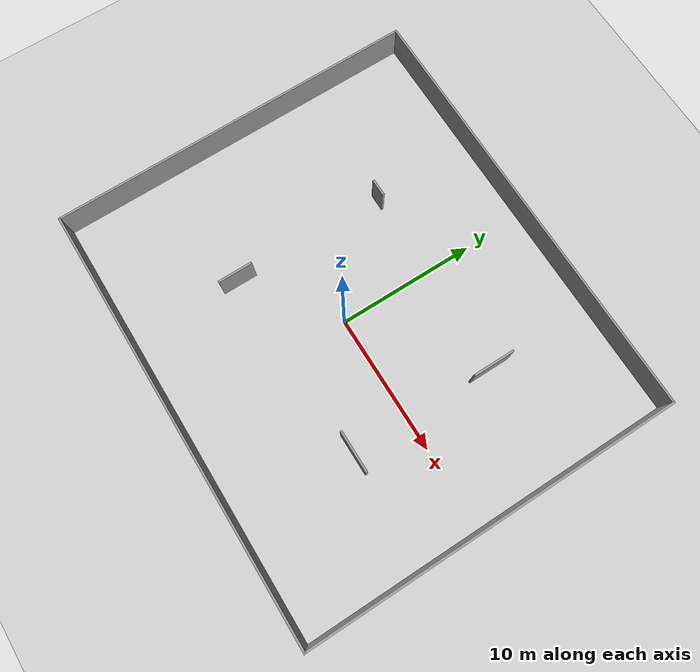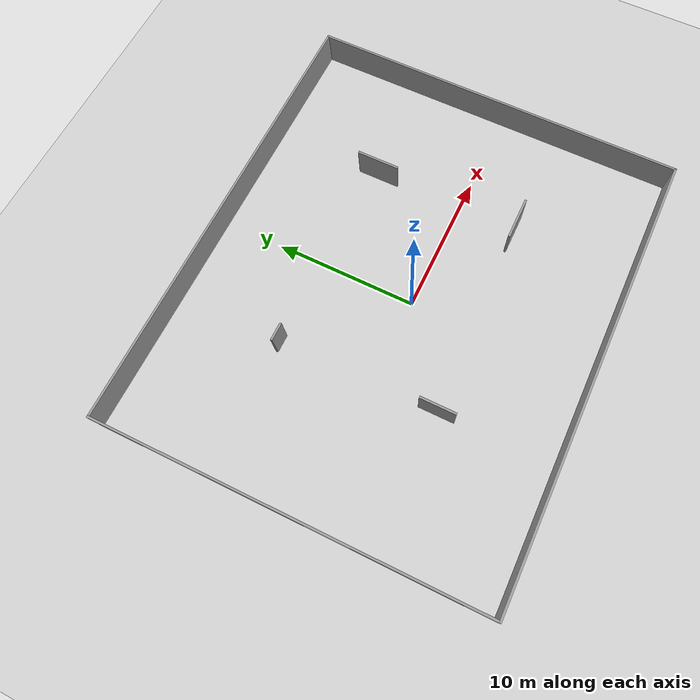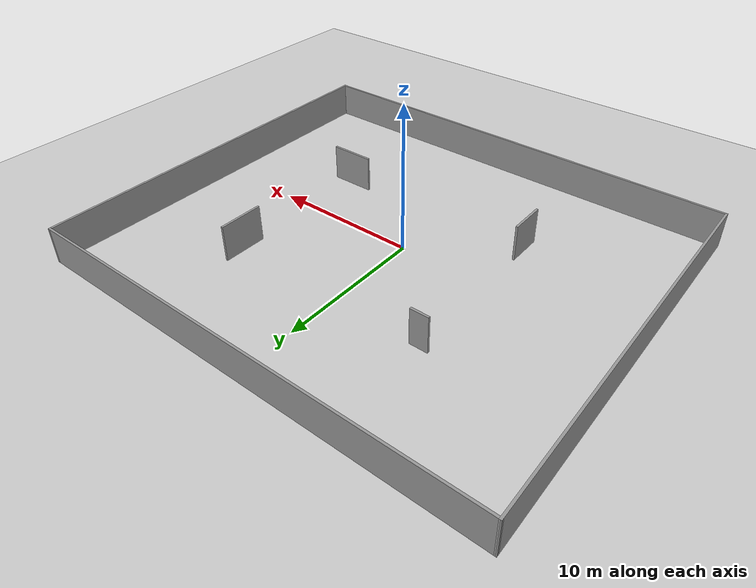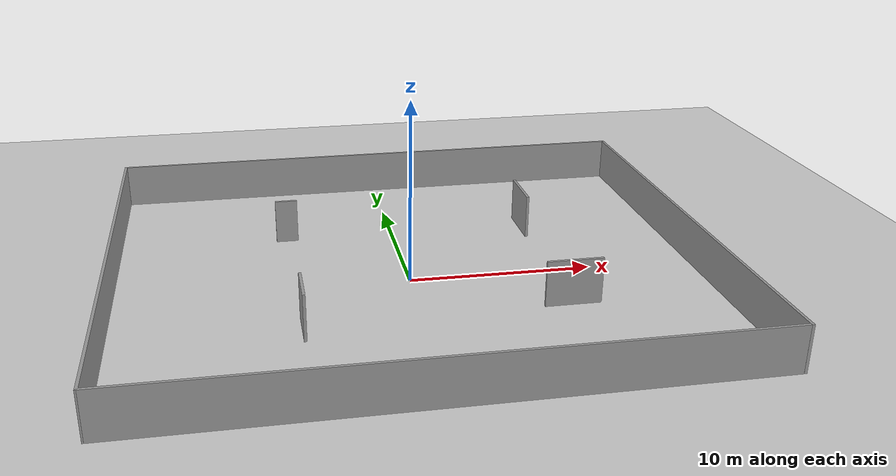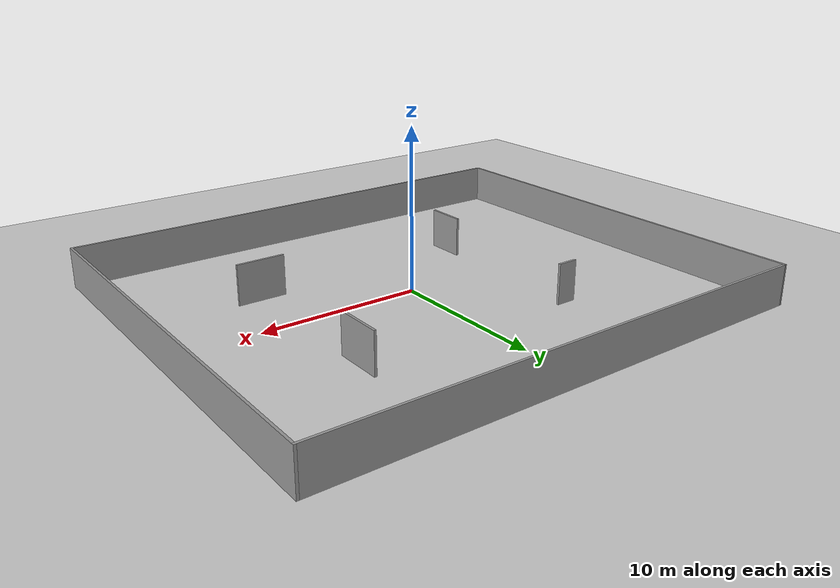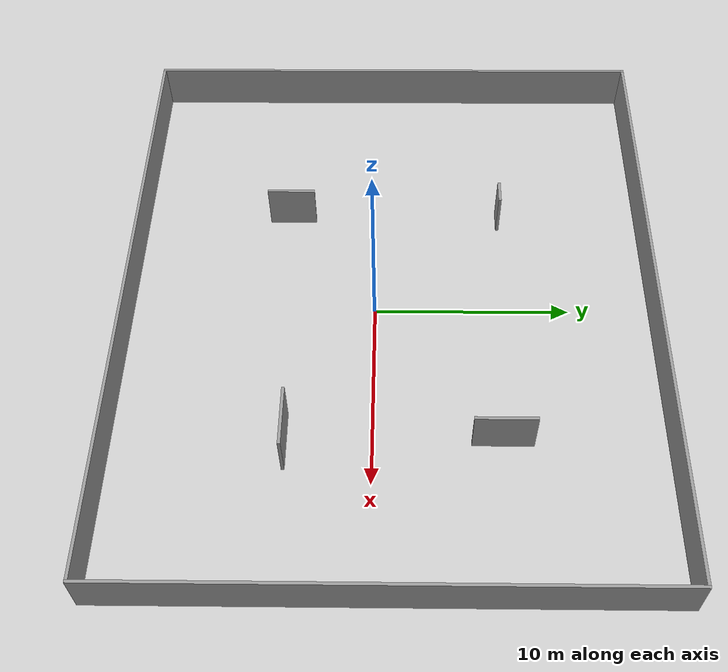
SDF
<sdf version="1.7">
 <world name="default">
  <light name="sun" type="directional">
   <pose>0 0 10 0 -0 0</pose>
   <diffuse>0.8 0.8 0.8 1</diffuse>
   <specular>0.2 0.2 0.2 1</specular>
   <attenuation>
    <range>1000</range>
    <constant>0.9</constant>
    <linear>0.01</linear>
    <quadratic>0.001</quadratic>
   </attenuation>
   <direction>-0.5 0.1 -0.9</direction>
   <spot><inner_angle>0</inner_angle><outer_angle>0</outer_angle><falloff>0</falloff></spot>
  </light>
  <model name="ground_plane">
   <static>1</static>
   <link name="link">
    <collision name="collision">
     <geometry><plane><normal>0 0 1</normal><size>100 100</size></plane></geometry>
     <surface>
      <contact><collide_bitmask>65535</collide_bitmask></contact>
      <friction><ode><mu>100</mu><mu2>50</mu2></ode></friction>
     </surface>
    </collision>
    <visual name="visual">
     <cast_shadows>0</cast_shadows>
     <geometry><plane><normal>0 0 1</normal><size>100 100</size></plane></geometry>
     <material>
      <script><uri>file://media/materials/scripts/gazebo.material</uri><name>Gazebo/Grey</name></script>
     </material>
    </visual>
   </link>
  </model>
  <gravity>0 0 -9.8</gravity>
  <magnetic_field>6e-06 2.3e-05 -4.2e-05</magnetic_field>
  <atmosphere type="adiabatic"/>
  <physics type="ode">
   <max_step_size>0.001</max_step_size>
   <real_time_factor>1</real_time_factor>
   <real_time_update_rate>1000</real_time_update_rate>
  </physics>
  <scene><ambient>0.4 0.4 0.4 1</ambient><background>0.7 0.7 0.7 1</background><shadows>1</shadows></scene>
  <spherical_coordinates>
   <surface_model>EARTH_WGS84</surface_model>
   <latitude_deg>0</latitude_deg>
   <longitude_deg>0</longitude_deg>
   <elevation>0</elevation>
   <heading_deg>0</heading_deg>
  </spherical_coordinates>
  <model name="map5">
   <pose>0.051526 0.82061 0 0 -0 0</pose>
   <link name="Wall_11">
    <collision name="Wall_11_Collision">
     <geometry><box><size>1.25 0.15 2.5</size></box></geometry>
     <pose>0 0 1.25 0 -0 0</pose>
    </collision>
    <visual name="Wall_11_Visual">
     <pose>0 0 1.25 0 -0 0</pose>
     <geometry><box><size>1.25 0.15 2.5</size></box></geometry>
     <material>
      <script><uri>file://media/materials/scripts/gazebo.material</uri><name>Gazebo/Grey</name></script>
      <ambient>1 1 1 1</ambient>
     </material>
     <meta><layer>0</layer></meta>
    </visual>
    <pose>-6.22884 5.77871 0 0 -0 0</pose>
   </link>
   <link name="Wall_13">
    <collision name="Wall_13_Collision">
     <geometry><box><size>2.5 0.15 2.5</size></box></geometry>
     <pose>0 0 1.25 0 -0 0</pose>
    </collision>
    <visual name="Wall_13_Visual">
     <pose>0 0 1.25 0 -0 0</pose>
     <geometry><box><size>2.5 0.15 2.5</size></box></geometry>
     <material>
      <script><uri>file://media/materials/scripts/gazebo.material</uri><name>Gazebo/Grey</name></script>
      <ambient>1 1 1 1</ambient>
     </material>
     <meta><layer>0</layer></meta>
    </visual>
    <pose>-6.17734 -5.37702 0 0 -0 1.5708</pose>
   </link>
   <link name="Wall_15">
    <collision name="Wall_15_Collision">
     <geometry><box><size>3 0.15 2.5</size></box></geometry>
     <pose>0 0 1.25 0 -0 0</pose>
    </collision>
    <visual name="Wall_15_Visual">
     <pose>0 0 1.25 0 -0 0</pose>
     <geometry><box><size>3 0.15 2.5</size></box></geometry>
     <material>
      <script><uri>file://media/materials/scripts/gazebo.material</uri><name>Gazebo/Grey</name></script>
      <ambient>1 1 1 1</ambient>
     </material>
     <meta><layer>0</layer></meta>
    </visual>
    <pose>7.77744 5.43641 0 0 -0 -1.5708</pose>
   </link>
   <link name="Wall_17">
    <collision name="Wall_17_Collision">
     <geometry><box><size>3 0.15 2.5</size></box></geometry>
     <pose>0 0 1.25 0 -0 0</pose>
    </collision>
    <visual name="Wall_17_Visual">
     <pose>0 0 1.25 0 -0 0</pose>
     <geometry><box><size>3 0.15 2.5</size></box></geometry>
     <material>
      <script><uri>file://media/materials/scripts/gazebo.material</uri><name>Gazebo/Grey</name></script>
      <ambient>1 1 1 1</ambient>
     </material>
     <meta><layer>0</layer></meta>
    </visual>
    <pose>7.69869 -4.98813 0 0 -0 0</pose>
   </link>
   <link name="Wall_3">
    <collision name="Wall_3_Collision">
     <geometry><box><size>26.9531 0.15 2.5</size></box></geometry>
     <pose>0 0 1.25 0 -0 0</pose>
    </collision>
    <visual name="Wall_3_Visual">
     <pose>0 0 1.25 0 -0 0</pose>
     <geometry><box><size>26.9531 0.15 2.5</size></box></geometry>
     <material>
      <script><uri>file://media/materials/scripts/gazebo.material</uri><name>Gazebo/Grey</name></script>
      <ambient>1 1 1 1</ambient>
     </material>
     <meta><layer>0</layer></meta>
    </visual>
    <pose>-15.7316 0.023457 0 0 -0 -1.56571</pose>
   </link>
   <link name="Wall_5">
    <collision name="Wall_5_Collision">
     <geometry><box><size>31.5537 0.15 2.5</size></box></geometry>
     <pose>0 0 1.25 0 -0 0</pose>
    </collision>
    <visual name="Wall_5_Visual">
     <pose>0 0 1.25 0 -0 0</pose>
     <geometry><box><size>31.5537 0.15 2.5</size></box></geometry>
     <material>
      <script><uri>file://media/materials/scripts/gazebo.material</uri><name>Gazebo/Grey</name></script>
      <ambient>1 1 1 1</ambient>
     </material>
     <meta><layer>0</layer></meta>
    </visual>
    <pose>0.038482 -13.4006 0 0 -0 -0.001448</pose>
   </link>
   <link name="Wall_8">
    <collision name="Wall_8_Collision">
     <geometry><box><size>31.75 0.15 2.5</size></box></geometry>
     <pose>0 0 1.25 0 -0 0</pose>
    </collision>
    <visual name="Wall_8_Visual">
     <pose>0 0 1.25 0 -0 0</pose>
     <geometry><box><size>31.75 0.15 2.5</size></box></geometry>
     <material>
      <script><uri>file://media/materials/scripts/gazebo.material</uri><name>Gazebo/Grey</name></script>
      <ambient>1 1 1 1</ambient>
     </material>
     <meta><layer>0</layer></meta>
    </visual>
    <pose>0.000189 13.4248 0 0 -0 0</pose>
   </link>
   <link name="Wall_9">
    <collision name="Wall_9_Collision">
     <geometry><box><size>27 0.15 2.5</size></box></geometry>
     <pose>0 0 1.25 0 -0 0</pose>
    </collision>
    <visual name="Wall_9_Visual">
     <pose>0 0 1.25 0 -0 0</pose>
     <geometry><box><size>27 0.15 2.5</size></box></geometry>
     <material>
      <script><uri>file://media/materials/scripts/gazebo.material</uri><name>Gazebo/Grey</name></script>
      <ambient>1 1 1 1</ambient>
     </material>
     <meta><layer>0</layer></meta>
    </visual>
    <pose>15.8002 -0.000189 0 0 -0 -1.5708</pose>
   </link>
   <static>1</static>
  </model>
 </world>
</sdf>
